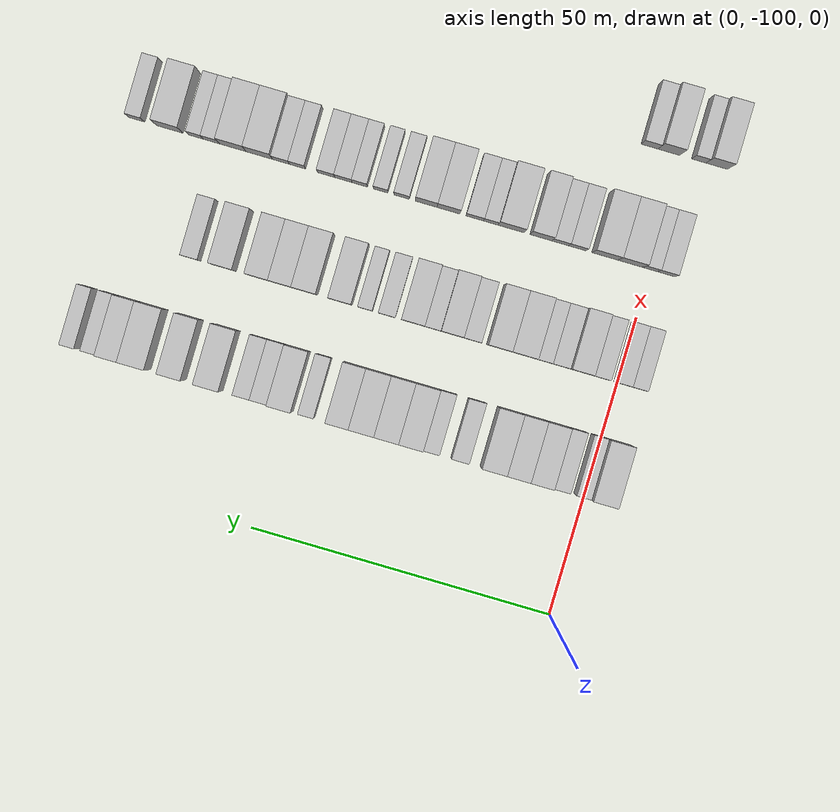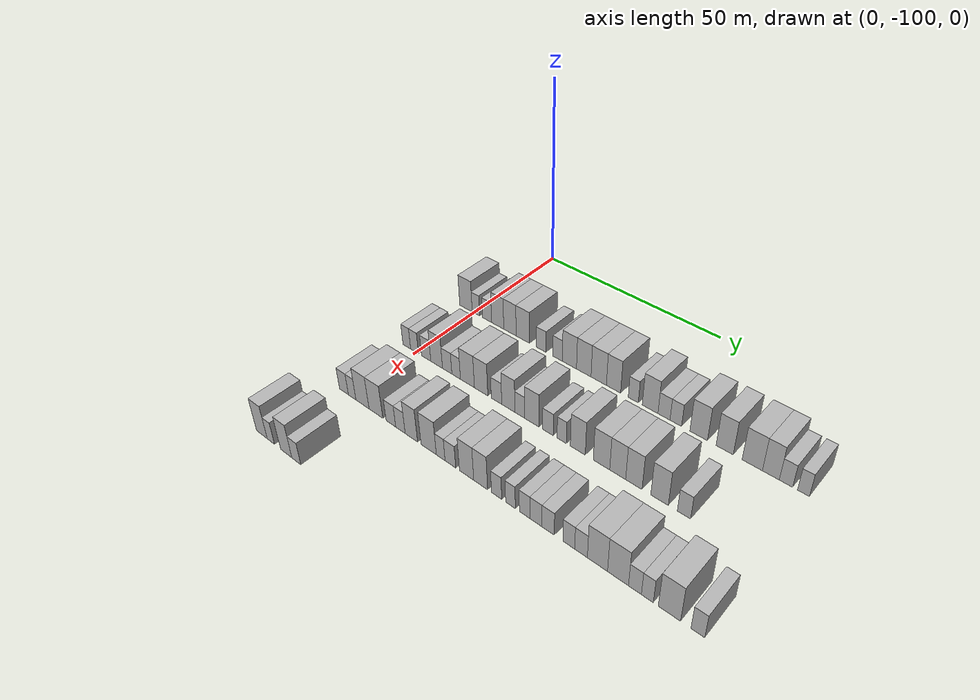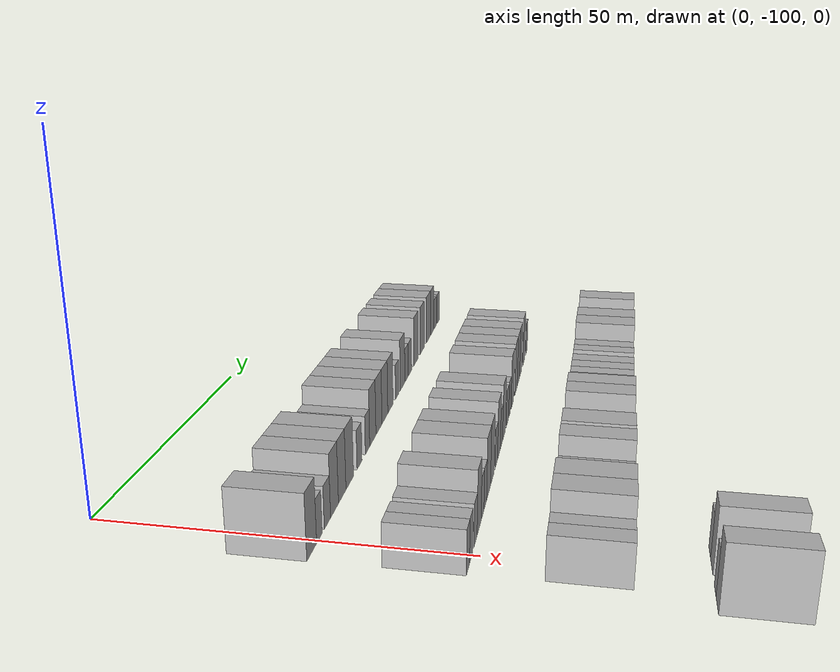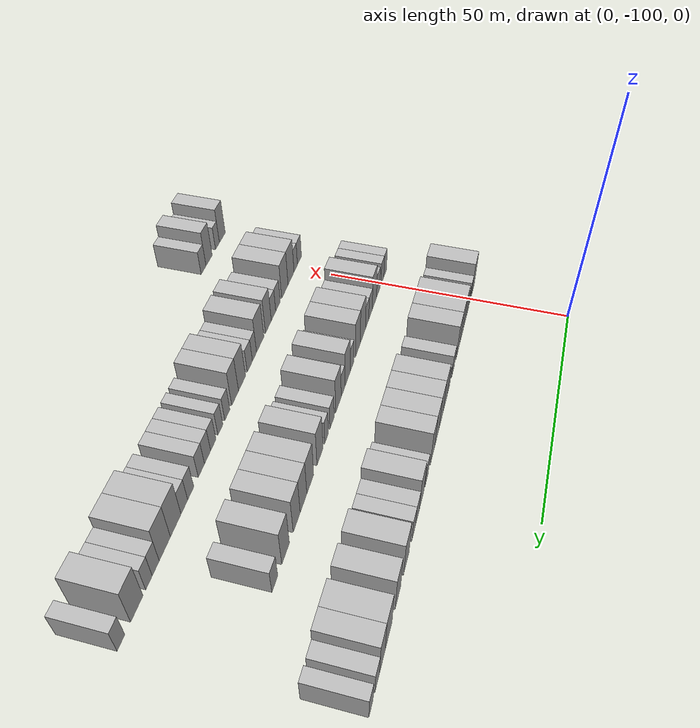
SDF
<sdf version="1.6">
 <world name="default">
  <model name="building_58">
   <static>1</static>
   <pose>25.0000 -102.7263 0 0.000000 0.000000 0.000000</pose>
   <link name="link">
    <pose>0 0 4.50 0 0 0</pose>
    <collision name="collision"><geometry><box><size>10.0000 4.1462 9.0000</size></box></geometry></collision>
    <visual name="visual">
     <cast_shadows>0</cast_shadows>
     <geometry><box><size>10.0000 4.1462 9.0000</size></box></geometry>
     <material>
      <script>
       <uri>model://HANNAS_wall/materials/scripts</uri>
       <uri>model://HANNAS_wall/materials/textures</uri>
       <name>vrc/HANNAS_wall</name>
      </script>
     </material>
    </visual>
   </link>
  </model>
  <model name="building_59">
   <static>1</static>
   <pose>25.0000 -99.4377 0 0.000000 0.000000 0.000000</pose>
   <link name="link">
    <pose>0 0 3.00 0 0 0</pose>
    <collision name="collision"><geometry><box><size>10.0000 2.4309 6.0000</size></box></geometry></collision>
    <visual name="visual">
     <cast_shadows>0</cast_shadows>
     <geometry><box><size>10.0000 2.4309 6.0000</size></box></geometry>
     <material>
      <script>
       <uri>model://HANNAS_wall/materials/scripts</uri>
       <uri>model://HANNAS_wall/materials/textures</uri>
       <name>vrc/HANNAS_wall</name>
      </script>
     </material>
    </visual>
   </link>
  </model>
  <model name="building_60">
   <static>1</static>
   <pose>25.0000 -95.7595 0 0.000000 0.000000 0.000000</pose>
   <link name="link">
    <pose>0 0 3.00 0 0 0</pose>
    <collision name="collision"><geometry><box><size>10.0000 2.9256 6.0000</size></box></geometry></collision>
    <visual name="visual">
     <cast_shadows>0</cast_shadows>
     <geometry><box><size>10.0000 2.9256 6.0000</size></box></geometry>
     <material>
      <script>
       <uri>model://HANNAS_wall/materials/scripts</uri>
       <uri>model://HANNAS_wall/materials/textures</uri>
       <name>vrc/HANNAS_wall</name>
      </script>
     </material>
    </visual>
   </link>
  </model>
  <model name="building_61">
   <static>1</static>
   <pose>25.0000 -92.3745 0 0.000000 0.000000 0.000000</pose>
   <link name="link">
    <pose>0 0 4.50 0 0 0</pose>
    <collision name="collision"><geometry><box><size>10.0000 3.8444 9.0000</size></box></geometry></collision>
    <visual name="visual">
     <cast_shadows>0</cast_shadows>
     <geometry><box><size>10.0000 3.8444 9.0000</size></box></geometry>
     <material>
      <script>
       <uri>model://HANNAS_wall/materials/scripts</uri>
       <uri>model://HANNAS_wall/materials/textures</uri>
       <name>vrc/HANNAS_wall</name>
      </script>
     </material>
    </visual>
   </link>
  </model>
  <model name="building_62">
   <static>1</static>
   <pose>25.0000 -88.5157 0 0.000000 0.000000 0.000000</pose>
   <link name="link">
    <pose>0 0 4.50 0 0 0</pose>
    <collision name="collision"><geometry><box><size>10.0000 3.8732 9.0000</size></box></geometry></collision>
    <visual name="visual">
     <cast_shadows>0</cast_shadows>
     <geometry><box><size>10.0000 3.8732 9.0000</size></box></geometry>
     <material>
      <script>
       <uri>model://HANNAS_wall/materials/scripts</uri>
       <uri>model://HANNAS_wall/materials/textures</uri>
       <name>vrc/HANNAS_wall</name>
      </script>
     </material>
    </visual>
   </link>
  </model>
  <model name="building_63">
   <static>1</static>
   <pose>25.0000 -84.5282 0 0.000000 0.000000 0.000000</pose>
   <link name="link">
    <pose>0 0 4.50 0 0 0</pose>
    <collision name="collision"><geometry><box><size>10.0000 4.1018 9.0000</size></box></geometry></collision>
    <visual name="visual">
     <cast_shadows>0</cast_shadows>
     <geometry><box><size>10.0000 4.1018 9.0000</size></box></geometry>
     <material>
      <script>
       <uri>model://HANNAS_wall/materials/scripts</uri>
       <uri>model://HANNAS_wall/materials/textures</uri>
       <name>vrc/HANNAS_wall</name>
      </script>
     </material>
    </visual>
   </link>
  </model>
  <model name="building_64">
   <static>1</static>
   <pose>25.0000 -79.0219 0 0.000000 0.000000 0.000000</pose>
   <link name="link">
    <pose>0 0 3.00 0 0 0</pose>
    <collision name="collision"><geometry><box><size>10.0000 2.9110 6.0000</size></box></geometry></collision>
    <visual name="visual">
     <cast_shadows>0</cast_shadows>
     <geometry><box><size>10.0000 2.9110 6.0000</size></box></geometry>
     <material>
      <script>
       <uri>model://HANNAS_wall/materials/scripts</uri>
       <uri>model://HANNAS_wall/materials/textures</uri>
       <name>vrc/HANNAS_wall</name>
      </script>
     </material>
    </visual>
   </link>
  </model>
  <model name="building_65">
   <static>1</static>
   <pose>25.0000 -74.2124 0 0.000000 0.000000 0.000000</pose>
   <link name="link">
    <pose>0 0 3.00 0 0 0</pose>
    <collision name="collision"><geometry><box><size>10.0000 2.7080 6.0000</size></box></geometry></collision>
    <visual name="visual">
     <cast_shadows>0</cast_shadows>
     <geometry><box><size>10.0000 2.7080 6.0000</size></box></geometry>
     <material>
      <script>
       <uri>model://HANNAS_wall/materials/scripts</uri>
       <uri>model://HANNAS_wall/materials/textures</uri>
       <name>vrc/HANNAS_wall</name>
      </script>
     </material>
    </visual>
   </link>
  </model>
  <model name="building_66">
   <static>1</static>
   <pose>25.0000 -70.8335 0 0.000000 0.000000 0.000000</pose>
   <link name="link">
    <pose>0 0 4.50 0 0 0</pose>
    <collision name="collision"><geometry><box><size>10.0000 4.0499 9.0000</size></box></geometry></collision>
    <visual name="visual">
     <cast_shadows>0</cast_shadows>
     <geometry><box><size>10.0000 4.0499 9.0000</size></box></geometry>
     <material>
      <script>
       <uri>model://HANNAS_wall/materials/scripts</uri>
       <uri>model://HANNAS_wall/materials/textures</uri>
       <name>vrc/HANNAS_wall</name>
      </script>
     </material>
    </visual>
   </link>
  </model>
  <model name="building_67">
   <static>1</static>
   <pose>25.0000 -66.7800 0 0.000000 0.000000 0.000000</pose>
   <link name="link">
    <pose>0 0 4.50 0 0 0</pose>
    <collision name="collision"><geometry><box><size>10.0000 4.0570 9.0000</size></box></geometry></collision>
    <visual name="visual">
     <cast_shadows>0</cast_shadows>
     <geometry><box><size>10.0000 4.0570 9.0000</size></box></geometry>
     <material>
      <script>
       <uri>model://HANNAS_wall/materials/scripts</uri>
       <uri>model://HANNAS_wall/materials/textures</uri>
       <name>vrc/HANNAS_wall</name>
      </script>
     </material>
    </visual>
   </link>
  </model>
  <model name="building_68">
   <static>1</static>
   <pose>25.0000 -62.6596 0 0.000000 0.000000 0.000000</pose>
   <link name="link">
    <pose>0 0 4.50 0 0 0</pose>
    <collision name="collision"><geometry><box><size>10.0000 4.1837 9.0000</size></box></geometry></collision>
    <visual name="visual">
     <cast_shadows>0</cast_shadows>
     <geometry><box><size>10.0000 4.1837 9.0000</size></box></geometry>
     <material>
      <script>
       <uri>model://HANNAS_wall/materials/scripts</uri>
       <uri>model://HANNAS_wall/materials/textures</uri>
       <name>vrc/HANNAS_wall</name>
      </script>
     </material>
    </visual>
   </link>
  </model>
  <model name="building_69">
   <static>1</static>
   <pose>25.0000 -58.6650 0 0.000000 0.000000 0.000000</pose>
   <link name="link">
    <pose>0 0 4.50 0 0 0</pose>
    <collision name="collision"><geometry><box><size>10.0000 3.8054 9.0000</size></box></geometry></collision>
    <visual name="visual">
     <cast_shadows>0</cast_shadows>
     <geometry><box><size>10.0000 3.8054 9.0000</size></box></geometry>
     <material>
      <script>
       <uri>model://HANNAS_wall/materials/scripts</uri>
       <uri>model://HANNAS_wall/materials/textures</uri>
       <name>vrc/HANNAS_wall</name>
      </script>
     </material>
    </visual>
   </link>
  </model>
  <model name="building_70">
   <static>1</static>
   <pose>25.0000 -53.4496 0 0.000000 0.000000 0.000000</pose>
   <link name="link">
    <pose>0 0 3.00 0 0 0</pose>
    <collision name="collision"><geometry><box><size>10.0000 2.6254 6.0000</size></box></geometry></collision>
    <visual name="visual">
     <cast_shadows>0</cast_shadows>
     <geometry><box><size>10.0000 2.6254 6.0000</size></box></geometry>
     <material>
      <script>
       <uri>model://HANNAS_wall/materials/scripts</uri>
       <uri>model://HANNAS_wall/materials/textures</uri>
       <name>vrc/HANNAS_wall</name>
      </script>
     </material>
    </visual>
   </link>
  </model>
  <model name="building_71">
   <static>1</static>
   <pose>25.0000 -49.1461 0 0.000000 0.000000 0.000000</pose>
   <link name="link">
    <pose>0 0 4.50 0 0 0</pose>
    <collision name="collision"><geometry><box><size>10.0000 3.9816 9.0000</size></box></geometry></collision>
    <visual name="visual">
     <cast_shadows>0</cast_shadows>
     <geometry><box><size>10.0000 3.9816 9.0000</size></box></geometry>
     <material>
      <script>
       <uri>model://HANNAS_wall/materials/scripts</uri>
       <uri>model://HANNAS_wall/materials/textures</uri>
       <name>vrc/HANNAS_wall</name>
      </script>
     </material>
    </visual>
   </link>
  </model>
  <model name="building_72">
   <static>1</static>
   <pose>25.0000 -45.6594 0 0.000000 0.000000 0.000000</pose>
   <link name="link">
    <pose>0 0 3.00 0 0 0</pose>
    <collision name="collision"><geometry><box><size>10.0000 2.9919 6.0000</size></box></geometry></collision>
    <visual name="visual">
     <cast_shadows>0</cast_shadows>
     <geometry><box><size>10.0000 2.9919 6.0000</size></box></geometry>
     <material>
      <script>
       <uri>model://HANNAS_wall/materials/scripts</uri>
       <uri>model://HANNAS_wall/materials/textures</uri>
       <name>vrc/HANNAS_wall</name>
      </script>
     </material>
    </visual>
   </link>
  </model>
  <model name="building_73">
   <static>1</static>
   <pose>25.0000 -42.7494 0 0.000000 0.000000 0.000000</pose>
   <link name="link">
    <pose>0 0 3.00 0 0 0</pose>
    <collision name="collision"><geometry><box><size>10.0000 2.8281 6.0000</size></box></geometry></collision>
    <visual name="visual">
     <cast_shadows>0</cast_shadows>
     <geometry><box><size>10.0000 2.8281 6.0000</size></box></geometry>
     <material>
      <script>
       <uri>model://HANNAS_wall/materials/scripts</uri>
       <uri>model://HANNAS_wall/materials/textures</uri>
       <name>vrc/HANNAS_wall</name>
      </script>
     </material>
    </visual>
   </link>
  </model>
  <model name="building_74">
   <static>1</static>
   <pose>25.0000 -37.2447 0 0.000000 0.000000 0.000000</pose>
   <link name="link">
    <pose>0 0 4.50 0 0 0</pose>
    <collision name="collision"><geometry><box><size>10.0000 4.1814 9.0000</size></box></geometry></collision>
    <visual name="visual">
     <cast_shadows>0</cast_shadows>
     <geometry><box><size>10.0000 4.1814 9.0000</size></box></geometry>
     <material>
      <script>
       <uri>model://HANNAS_wall/materials/scripts</uri>
       <uri>model://HANNAS_wall/materials/textures</uri>
       <name>vrc/HANNAS_wall</name>
      </script>
     </material>
    </visual>
   </link>
  </model>
  <model name="building_75">
   <static>1</static>
   <pose>25.0000 -31.1862 0 0.000000 0.000000 0.000000</pose>
   <link name="link">
    <pose>0 0 4.50 0 0 0</pose>
    <collision name="collision"><geometry><box><size>10.0000 3.9354 9.0000</size></box></geometry></collision>
    <visual name="visual">
     <cast_shadows>0</cast_shadows>
     <geometry><box><size>10.0000 3.9354 9.0000</size></box></geometry>
     <material>
      <script>
       <uri>model://HANNAS_wall/materials/scripts</uri>
       <uri>model://HANNAS_wall/materials/textures</uri>
       <name>vrc/HANNAS_wall</name>
      </script>
     </material>
    </visual>
   </link>
  </model>
  <model name="building_76">
   <static>1</static>
   <pose>25.0000 -24.9823 0 0.000000 0.000000 0.000000</pose>
   <link name="link">
    <pose>0 0 4.50 0 0 0</pose>
    <collision name="collision"><geometry><box><size>10.0000 4.4725 9.0000</size></box></geometry></collision>
    <visual name="visual">
     <cast_shadows>0</cast_shadows>
     <geometry><box><size>10.0000 4.4725 9.0000</size></box></geometry>
     <material>
      <script>
       <uri>model://HANNAS_wall/materials/scripts</uri>
       <uri>model://HANNAS_wall/materials/textures</uri>
       <name>vrc/HANNAS_wall</name>
      </script>
     </material>
    </visual>
   </link>
  </model>
  <model name="building_77">
   <static>1</static>
   <pose>25.0000 -20.9262 0 0.000000 0.000000 0.000000</pose>
   <link name="link">
    <pose>0 0 4.50 0 0 0</pose>
    <collision name="collision"><geometry><box><size>10.0000 3.6397 9.0000</size></box></geometry></collision>
    <visual name="visual">
     <cast_shadows>0</cast_shadows>
     <geometry><box><size>10.0000 3.6397 9.0000</size></box></geometry>
     <material>
      <script>
       <uri>model://HANNAS_wall/materials/scripts</uri>
       <uri>model://HANNAS_wall/materials/textures</uri>
       <name>vrc/HANNAS_wall</name>
      </script>
     </material>
    </visual>
   </link>
  </model>
  <model name="building_78">
   <static>1</static>
   <pose>25.0000 -17.6919 0 0.000000 0.000000 0.000000</pose>
   <link name="link">
    <pose>0 0 3.00 0 0 0</pose>
    <collision name="collision"><geometry><box><size>10.0000 2.8288 6.0000</size></box></geometry></collision>
    <visual name="visual">
     <cast_shadows>0</cast_shadows>
     <geometry><box><size>10.0000 2.8288 6.0000</size></box></geometry>
     <material>
      <script>
       <uri>model://HANNAS_wall/materials/scripts</uri>
       <uri>model://HANNAS_wall/materials/textures</uri>
       <name>vrc/HANNAS_wall</name>
      </script>
     </material>
    </visual>
   </link>
  </model>
  <model name="building_79">
   <static>1</static>
   <pose>25.0000 -14.0404 0 0.000000 0.000000 0.000000</pose>
   <link name="link">
    <pose>0 0 3.00 0 0 0</pose>
    <collision name="collision"><geometry><box><size>10.0000 2.4742 6.0000</size></box></geometry></collision>
    <visual name="visual">
     <cast_shadows>0</cast_shadows>
     <geometry><box><size>10.0000 2.4742 6.0000</size></box></geometry>
     <material>
      <script>
       <uri>model://HANNAS_wall/materials/scripts</uri>
       <uri>model://HANNAS_wall/materials/textures</uri>
       <name>vrc/HANNAS_wall</name>
      </script>
     </material>
    </visual>
   </link>
  </model>
  <model name="building_220">
   <static>1</static>
   <pose>44.0000 -103.2041 0 0.000000 0.000000 0.000000</pose>
   <link name="link">
    <pose>0 0 3.00 0 0 0</pose>
    <collision name="collision"><geometry><box><size>10.0000 2.5457 6.0000</size></box></geometry></collision>
    <visual name="visual">
     <cast_shadows>0</cast_shadows>
     <geometry><box><size>10.0000 2.5457 6.0000</size></box></geometry>
     <material>
      <script>
       <uri>model://HANNAS_wall/materials/scripts</uri>
       <uri>model://HANNAS_wall/materials/textures</uri>
       <name>vrc/HANNAS_wall</name>
      </script>
     </material>
    </visual>
   </link>
  </model>
  <model name="building_221">
   <static>1</static>
   <pose>44.0000 -100.6495 0 0.000000 0.000000 0.000000</pose>
   <link name="link">
    <pose>0 0 3.00 0 0 0</pose>
    <collision name="collision"><geometry><box><size>10.0000 2.5634 6.0000</size></box></geometry></collision>
    <visual name="visual">
     <cast_shadows>0</cast_shadows>
     <geometry><box><size>10.0000 2.5634 6.0000</size></box></geometry>
     <material>
      <script>
       <uri>model://HANNAS_wall/materials/scripts</uri>
       <uri>model://HANNAS_wall/materials/textures</uri>
       <name>vrc/HANNAS_wall</name>
      </script>
     </material>
    </visual>
   </link>
  </model>
  <model name="building_222">
   <static>1</static>
   <pose>44.0000 -96.8733 0 0.000000 0.000000 0.000000</pose>
   <link name="link">
    <pose>0 0 3.00 0 0 0</pose>
    <collision name="collision"><geometry><box><size>10.0000 2.9889 6.0000</size></box></geometry></collision>
    <visual name="visual">
     <cast_shadows>0</cast_shadows>
     <geometry><box><size>10.0000 2.9889 6.0000</size></box></geometry>
     <material>
      <script>
       <uri>model://HANNAS_wall/materials/scripts</uri>
       <uri>model://HANNAS_wall/materials/textures</uri>
       <name>vrc/HANNAS_wall</name>
      </script>
     </material>
    </visual>
   </link>
  </model>
  <model name="building_223">
   <static>1</static>
   <pose>44.0000 -93.5309 0 0.000000 0.000000 0.000000</pose>
   <link name="link">
    <pose>0 0 4.50 0 0 0</pose>
    <collision name="collision"><geometry><box><size>10.0000 3.6960 9.0000</size></box></geometry></collision>
    <visual name="visual">
     <cast_shadows>0</cast_shadows>
     <geometry><box><size>10.0000 3.6960 9.0000</size></box></geometry>
     <material>
      <script>
       <uri>model://HANNAS_wall/materials/scripts</uri>
       <uri>model://HANNAS_wall/materials/textures</uri>
       <name>vrc/HANNAS_wall</name>
      </script>
     </material>
    </visual>
   </link>
  </model>
  <model name="building_224">
   <static>1</static>
   <pose>44.0000 -90.2300 0 0.000000 0.000000 0.000000</pose>
   <link name="link">
    <pose>0 0 3.00 0 0 0</pose>
    <collision name="collision"><geometry><box><size>10.0000 2.9059 6.0000</size></box></geometry></collision>
    <visual name="visual">
     <cast_shadows>0</cast_shadows>
     <geometry><box><size>10.0000 2.9059 6.0000</size></box></geometry>
     <material>
      <script>
       <uri>model://HANNAS_wall/materials/scripts</uri>
       <uri>model://HANNAS_wall/materials/textures</uri>
       <name>vrc/HANNAS_wall</name>
      </script>
     </material>
    </visual>
   </link>
  </model>
  <model name="building_225">
   <static>1</static>
   <pose>44.0000 -87.4638 0 0.000000 0.000000 0.000000</pose>
   <link name="link">
    <pose>0 0 3.00 0 0 0</pose>
    <collision name="collision"><geometry><box><size>10.0000 2.6264 6.0000</size></box></geometry></collision>
    <visual name="visual">
     <cast_shadows>0</cast_shadows>
     <geometry><box><size>10.0000 2.6264 6.0000</size></box></geometry>
     <material>
      <script>
       <uri>model://HANNAS_wall/materials/scripts</uri>
       <uri>model://HANNAS_wall/materials/textures</uri>
       <name>vrc/HANNAS_wall</name>
      </script>
     </material>
    </visual>
   </link>
  </model>
  <model name="building_226">
   <static>1</static>
   <pose>44.0000 -84.0478 0 0.000000 0.000000 0.000000</pose>
   <link name="link">
    <pose>0 0 4.50 0 0 0</pose>
    <collision name="collision"><geometry><box><size>10.0000 4.2056 9.0000</size></box></geometry></collision>
    <visual name="visual">
     <cast_shadows>0</cast_shadows>
     <geometry><box><size>10.0000 4.2056 9.0000</size></box></geometry>
     <material>
      <script>
       <uri>model://HANNAS_wall/materials/scripts</uri>
       <uri>model://HANNAS_wall/materials/textures</uri>
       <name>vrc/HANNAS_wall</name>
      </script>
     </material>
    </visual>
   </link>
  </model>
  <model name="building_227">
   <static>1</static>
   <pose>44.0000 -79.9725 0 0.000000 0.000000 0.000000</pose>
   <link name="link">
    <pose>0 0 4.50 0 0 0</pose>
    <collision name="collision"><geometry><box><size>10.0000 3.9449 9.0000</size></box></geometry></collision>
    <visual name="visual">
     <cast_shadows>0</cast_shadows>
     <geometry><box><size>10.0000 3.9449 9.0000</size></box></geometry>
     <material>
      <script>
       <uri>model://HANNAS_wall/materials/scripts</uri>
       <uri>model://HANNAS_wall/materials/textures</uri>
       <name>vrc/HANNAS_wall</name>
      </script>
     </material>
    </visual>
   </link>
  </model>
  <model name="building_228">
   <static>1</static>
   <pose>44.0000 -75.5027 0 0.000000 0.000000 0.000000</pose>
   <link name="link">
    <pose>0 0 3.00 0 0 0</pose>
    <collision name="collision"><geometry><box><size>10.0000 2.9947 6.0000</size></box></geometry></collision>
    <visual name="visual">
     <cast_shadows>0</cast_shadows>
     <geometry><box><size>10.0000 2.9947 6.0000</size></box></geometry>
     <material>
      <script>
       <uri>model://HANNAS_wall/materials/scripts</uri>
       <uri>model://HANNAS_wall/materials/textures</uri>
       <name>vrc/HANNAS_wall</name>
      </script>
     </material>
    </visual>
   </link>
  </model>
  <model name="building_229">
   <static>1</static>
   <pose>44.0000 -72.1398 0 0.000000 0.000000 0.000000</pose>
   <link name="link">
    <pose>0 0 4.50 0 0 0</pose>
    <collision name="collision"><geometry><box><size>10.0000 3.7310 9.0000</size></box></geometry></collision>
    <visual name="visual">
     <cast_shadows>0</cast_shadows>
     <geometry><box><size>10.0000 3.7310 9.0000</size></box></geometry>
     <material>
      <script>
       <uri>model://HANNAS_wall/materials/scripts</uri>
       <uri>model://HANNAS_wall/materials/textures</uri>
       <name>vrc/HANNAS_wall</name>
      </script>
     </material>
    </visual>
   </link>
  </model>
  <model name="building_230">
   <static>1</static>
   <pose>44.0000 -68.9343 0 0.000000 0.000000 0.000000</pose>
   <link name="link">
    <pose>0 0 3.00 0 0 0</pose>
    <collision name="collision"><geometry><box><size>10.0000 2.6800 6.0000</size></box></geometry></collision>
    <visual name="visual">
     <cast_shadows>0</cast_shadows>
     <geometry><box><size>10.0000 2.6800 6.0000</size></box></geometry>
     <material>
      <script>
       <uri>model://HANNAS_wall/materials/scripts</uri>
       <uri>model://HANNAS_wall/materials/textures</uri>
       <name>vrc/HANNAS_wall</name>
      </script>
     </material>
    </visual>
   </link>
  </model>
  <model name="building_231">
   <static>1</static>
   <pose>44.0000 -65.6612 0 0.000000 0.000000 0.000000</pose>
   <link name="link">
    <pose>0 0 4.50 0 0 0</pose>
    <collision name="collision"><geometry><box><size>10.0000 3.8662 9.0000</size></box></geometry></collision>
    <visual name="visual">
     <cast_shadows>0</cast_shadows>
     <geometry><box><size>10.0000 3.8662 9.0000</size></box></geometry>
     <material>
      <script>
       <uri>model://HANNAS_wall/materials/scripts</uri>
       <uri>model://HANNAS_wall/materials/textures</uri>
       <name>vrc/HANNAS_wall</name>
      </script>
     </material>
    </visual>
   </link>
  </model>
  <model name="building_232">
   <static>1</static>
   <pose>44.0000 -61.3179 0 0.000000 0.000000 0.000000</pose>
   <link name="link">
    <pose>0 0 3.00 0 0 0</pose>
    <collision name="collision"><geometry><box><size>10.0000 2.8205 6.0000</size></box></geometry></collision>
    <visual name="visual">
     <cast_shadows>0</cast_shadows>
     <geometry><box><size>10.0000 2.8205 6.0000</size></box></geometry>
     <material>
      <script>
       <uri>model://HANNAS_wall/materials/scripts</uri>
       <uri>model://HANNAS_wall/materials/textures</uri>
       <name>vrc/HANNAS_wall</name>
      </script>
     </material>
    </visual>
   </link>
  </model>
  <model name="building_233">
   <static>1</static>
   <pose>44.0000 -57.6970 0 0.000000 0.000000 0.000000</pose>
   <link name="link">
    <pose>0 0 3.00 0 0 0</pose>
    <collision name="collision"><geometry><box><size>10.0000 2.4213 6.0000</size></box></geometry></collision>
    <visual name="visual">
     <cast_shadows>0</cast_shadows>
     <geometry><box><size>10.0000 2.4213 6.0000</size></box></geometry>
     <material>
      <script>
       <uri>model://HANNAS_wall/materials/scripts</uri>
       <uri>model://HANNAS_wall/materials/textures</uri>
       <name>vrc/HANNAS_wall</name>
      </script>
     </material>
    </visual>
   </link>
  </model>
  <model name="building_234">
   <static>1</static>
   <pose>44.0000 -53.5879 0 0.000000 0.000000 0.000000</pose>
   <link name="link">
    <pose>0 0 4.50 0 0 0</pose>
    <collision name="collision"><geometry><box><size>10.0000 3.7968 9.0000</size></box></geometry></collision>
    <visual name="visual">
     <cast_shadows>0</cast_shadows>
     <geometry><box><size>10.0000 3.7968 9.0000</size></box></geometry>
     <material>
      <script>
       <uri>model://HANNAS_wall/materials/scripts</uri>
       <uri>model://HANNAS_wall/materials/textures</uri>
       <name>vrc/HANNAS_wall</name>
      </script>
     </material>
    </visual>
   </link>
  </model>
  <model name="building_235">
   <static>1</static>
   <pose>44.0000 -47.6789 0 0.000000 0.000000 0.000000</pose>
   <link name="link">
    <pose>0 0 4.50 0 0 0</pose>
    <collision name="collision"><geometry><box><size>10.0000 4.0213 9.0000</size></box></geometry></collision>
    <visual name="visual">
     <cast_shadows>0</cast_shadows>
     <geometry><box><size>10.0000 4.0213 9.0000</size></box></geometry>
     <material>
      <script>
       <uri>model://HANNAS_wall/materials/scripts</uri>
       <uri>model://HANNAS_wall/materials/textures</uri>
       <name>vrc/HANNAS_wall</name>
      </script>
     </material>
    </visual>
   </link>
  </model>
  <model name="building_236">
   <static>1</static>
   <pose>44.0000 -43.7655 0 0.000000 0.000000 0.000000</pose>
   <link name="link">
    <pose>0 0 4.50 0 0 0</pose>
    <collision name="collision"><geometry><box><size>10.0000 3.8055 9.0000</size></box></geometry></collision>
    <visual name="visual">
     <cast_shadows>0</cast_shadows>
     <geometry><box><size>10.0000 3.8055 9.0000</size></box></geometry>
     <material>
      <script>
       <uri>model://HANNAS_wall/materials/scripts</uri>
       <uri>model://HANNAS_wall/materials/textures</uri>
       <name>vrc/HANNAS_wall</name>
      </script>
     </material>
    </visual>
   </link>
  </model>
  <model name="building_237">
   <static>1</static>
   <pose>44.0000 -39.9417 0 0.000000 0.000000 0.000000</pose>
   <link name="link">
    <pose>0 0 4.50 0 0 0</pose>
    <collision name="collision"><geometry><box><size>10.0000 3.8422 9.0000</size></box></geometry></collision>
    <visual name="visual">
     <cast_shadows>0</cast_shadows>
     <geometry><box><size>10.0000 3.8422 9.0000</size></box></geometry>
     <material>
      <script>
       <uri>model://HANNAS_wall/materials/scripts</uri>
       <uri>model://HANNAS_wall/materials/textures</uri>
       <name>vrc/HANNAS_wall</name>
      </script>
     </material>
    </visual>
   </link>
  </model>
  <model name="building_238">
   <static>1</static>
   <pose>44.0000 -34.0432 0 0.000000 0.000000 0.000000</pose>
   <link name="link">
    <pose>0 0 4.50 0 0 0</pose>
    <collision name="collision"><geometry><box><size>10.0000 3.9546 9.0000</size></box></geometry></collision>
    <visual name="visual">
     <cast_shadows>0</cast_shadows>
     <geometry><box><size>10.0000 3.9546 9.0000</size></box></geometry>
     <material>
      <script>
       <uri>model://HANNAS_wall/materials/scripts</uri>
       <uri>model://HANNAS_wall/materials/textures</uri>
       <name>vrc/HANNAS_wall</name>
      </script>
     </material>
    </visual>
   </link>
  </model>
  <model name="building_239">
   <static>1</static>
   <pose>44.0000 -28.6204 0 0.000000 0.000000 0.000000</pose>
   <link name="link">
    <pose>0 0 3.00 0 0 0</pose>
    <collision name="collision"><geometry><box><size>10.0000 2.8911 6.0000</size></box></geometry></collision>
    <visual name="visual">
     <cast_shadows>0</cast_shadows>
     <geometry><box><size>10.0000 2.8911 6.0000</size></box></geometry>
     <material>
      <script>
       <uri>model://HANNAS_wall/materials/scripts</uri>
       <uri>model://HANNAS_wall/materials/textures</uri>
       <name>vrc/HANNAS_wall</name>
      </script>
     </material>
    </visual>
   </link>
  </model>
  <model name="building_396">
   <static>1</static>
   <pose>63.0000 -102.5530 0 0.000000 0.000000 0.000000</pose>
   <link name="link">
    <pose>0 0 3.00 0 0 0</pose>
    <collision name="collision"><geometry><box><size>10.0000 2.9256 6.0000</size></box></geometry></collision>
    <visual name="visual">
     <cast_shadows>0</cast_shadows>
     <geometry><box><size>10.0000 2.9256 6.0000</size></box></geometry>
     <material>
      <script>
       <uri>model://HANNAS_wall/materials/scripts</uri>
       <uri>model://HANNAS_wall/materials/textures</uri>
       <name>vrc/HANNAS_wall</name>
      </script>
     </material>
    </visual>
   </link>
  </model>
  <model name="building_397">
   <static>1</static>
   <pose>63.0000 -99.8697 0 0.000000 0.000000 0.000000</pose>
   <link name="link">
    <pose>0 0 3.00 0 0 0</pose>
    <collision name="collision"><geometry><box><size>10.0000 2.4409 6.0000</size></box></geometry></collision>
    <visual name="visual">
     <cast_shadows>0</cast_shadows>
     <geometry><box><size>10.0000 2.4409 6.0000</size></box></geometry>
     <material>
      <script>
       <uri>model://HANNAS_wall/materials/scripts</uri>
       <uri>model://HANNAS_wall/materials/textures</uri>
       <name>vrc/HANNAS_wall</name>
      </script>
     </material>
    </visual>
   </link>
  </model>
  <model name="building_398">
   <static>1</static>
   <pose>63.0000 -96.5523 0 0.000000 0.000000 0.000000</pose>
   <link name="link">
    <pose>0 0 4.50 0 0 0</pose>
    <collision name="collision"><geometry><box><size>10.0000 4.1939 9.0000</size></box></geometry></collision>
    <visual name="visual">
     <cast_shadows>0</cast_shadows>
     <geometry><box><size>10.0000 4.1939 9.0000</size></box></geometry>
     <material>
      <script>
       <uri>model://HANNAS_wall/materials/scripts</uri>
       <uri>model://HANNAS_wall/materials/textures</uri>
       <name>vrc/HANNAS_wall</name>
      </script>
     </material>
    </visual>
   </link>
  </model>
  <model name="building_399">
   <static>1</static>
   <pose>63.0000 -92.2977 0 0.000000 0.000000 0.000000</pose>
   <link name="link">
    <pose>0 0 4.50 0 0 0</pose>
    <collision name="collision"><geometry><box><size>10.0000 4.3153 9.0000</size></box></geometry></collision>
    <visual name="visual">
     <cast_shadows>0</cast_shadows>
     <geometry><box><size>10.0000 4.3153 9.0000</size></box></geometry>
     <material>
      <script>
       <uri>model://HANNAS_wall/materials/scripts</uri>
       <uri>model://HANNAS_wall/materials/textures</uri>
       <name>vrc/HANNAS_wall</name>
      </script>
     </material>
    </visual>
   </link>
  </model>
  <model name="building_400">
   <static>1</static>
   <pose>63.0000 -87.6794 0 0.000000 0.000000 0.000000</pose>
   <link name="link">
    <pose>0 0 3.00 0 0 0</pose>
    <collision name="collision"><geometry><box><size>10.0000 2.9213 6.0000</size></box></geometry></collision>
    <visual name="visual">
     <cast_shadows>0</cast_shadows>
     <geometry><box><size>10.0000 2.9213 6.0000</size></box></geometry>
     <material>
      <script>
       <uri>model://HANNAS_wall/materials/scripts</uri>
       <uri>model://HANNAS_wall/materials/textures</uri>
       <name>vrc/HANNAS_wall</name>
      </script>
     </material>
    </visual>
   </link>
  </model>
  <model name="building_401">
   <static>1</static>
   <pose>63.0000 -84.8010 0 0.000000 0.000000 0.000000</pose>
   <link name="link">
    <pose>0 0 3.00 0 0 0</pose>
    <collision name="collision"><geometry><box><size>10.0000 2.8355 6.0000</size></box></geometry></collision>
    <visual name="visual">
     <cast_shadows>0</cast_shadows>
     <geometry><box><size>10.0000 2.8355 6.0000</size></box></geometry>
     <material>
      <script>
       <uri>model://HANNAS_wall/materials/scripts</uri>
       <uri>model://HANNAS_wall/materials/textures</uri>
       <name>vrc/HANNAS_wall</name>
      </script>
     </material>
    </visual>
   </link>
  </model>
  <model name="building_402">
   <static>1</static>
   <pose>63.0000 -81.5644 0 0.000000 0.000000 0.000000</pose>
   <link name="link">
    <pose>0 0 4.50 0 0 0</pose>
    <collision name="collision"><geometry><box><size>10.0000 3.6377 9.0000</size></box></geometry></collision>
    <visual name="visual">
     <cast_shadows>0</cast_shadows>
     <geometry><box><size>10.0000 3.6377 9.0000</size></box></geometry>
     <material>
      <script>
       <uri>model://HANNAS_wall/materials/scripts</uri>
       <uri>model://HANNAS_wall/materials/textures</uri>
       <name>vrc/HANNAS_wall</name>
      </script>
     </material>
    </visual>
   </link>
  </model>
  <model name="building_403">
   <static>1</static>
   <pose>63.0000 -76.5667 0 0.000000 0.000000 0.000000</pose>
   <link name="link">
    <pose>0 0 4.50 0 0 0</pose>
    <collision name="collision"><geometry><box><size>10.0000 4.3576 9.0000</size></box></geometry></collision>
    <visual name="visual">
     <cast_shadows>0</cast_shadows>
     <geometry><box><size>10.0000 4.3576 9.0000</size></box></geometry>
     <material>
      <script>
       <uri>model://HANNAS_wall/materials/scripts</uri>
       <uri>model://HANNAS_wall/materials/textures</uri>
       <name>vrc/HANNAS_wall</name>
      </script>
     </material>
    </visual>
   </link>
  </model>
  <model name="building_404">
   <static>1</static>
   <pose>63.0000 -73.1667 0 0.000000 0.000000 0.000000</pose>
   <link name="link">
    <pose>0 0 3.00 0 0 0</pose>
    <collision name="collision"><geometry><box><size>10.0000 2.4423 6.0000</size></box></geometry></collision>
    <visual name="visual">
     <cast_shadows>0</cast_shadows>
     <geometry><box><size>10.0000 2.4423 6.0000</size></box></geometry>
     <material>
      <script>
       <uri>model://HANNAS_wall/materials/scripts</uri>
       <uri>model://HANNAS_wall/materials/textures</uri>
       <name>vrc/HANNAS_wall</name>
      </script>
     </material>
    </visual>
   </link>
  </model>
  <model name="building_405">
   <static>1</static>
   <pose>63.0000 -70.4739 0 0.000000 0.000000 0.000000</pose>
   <link name="link">
    <pose>0 0 3.00 0 0 0</pose>
    <collision name="collision"><geometry><box><size>10.0000 2.9432 6.0000</size></box></geometry></collision>
    <visual name="visual">
     <cast_shadows>0</cast_shadows>
     <geometry><box><size>10.0000 2.9432 6.0000</size></box></geometry>
     <material>
      <script>
       <uri>model://HANNAS_wall/materials/scripts</uri>
       <uri>model://HANNAS_wall/materials/textures</uri>
       <name>vrc/HANNAS_wall</name>
      </script>
     </material>
    </visual>
   </link>
  </model>
  <model name="building_406">
   <static>1</static>
   <pose>63.0000 -66.0880 0 0.000000 0.000000 0.000000</pose>
   <link name="link">
    <pose>0 0 4.50 0 0 0</pose>
    <collision name="collision"><geometry><box><size>10.0000 3.8287 9.0000</size></box></geometry></collision>
    <visual name="visual">
     <cast_shadows>0</cast_shadows>
     <geometry><box><size>10.0000 3.8287 9.0000</size></box></geometry>
     <material>
      <script>
       <uri>model://HANNAS_wall/materials/scripts</uri>
       <uri>model://HANNAS_wall/materials/textures</uri>
       <name>vrc/HANNAS_wall</name>
      </script>
     </material>
    </visual>
   </link>
  </model>
  <model name="building_407">
   <static>1</static>
   <pose>63.0000 -62.3514 0 0.000000 0.000000 0.000000</pose>
   <link name="link">
    <pose>0 0 4.50 0 0 0</pose>
    <collision name="collision"><geometry><box><size>10.0000 3.6446 9.0000</size></box></geometry></collision>
    <visual name="visual">
     <cast_shadows>0</cast_shadows>
     <geometry><box><size>10.0000 3.6446 9.0000</size></box></geometry>
     <material>
      <script>
       <uri>model://HANNAS_wall/materials/scripts</uri>
       <uri>model://HANNAS_wall/materials/textures</uri>
       <name>vrc/HANNAS_wall</name>
      </script>
     </material>
    </visual>
   </link>
  </model>
  <model name="building_408">
   <static>1</static>
   <pose>63.0000 -58.2281 0 0.000000 0.000000 0.000000</pose>
   <link name="link">
    <pose>0 0 3.00 0 0 0</pose>
    <collision name="collision"><geometry><box><size>10.0000 2.6019 6.0000</size></box></geometry></collision>
    <visual name="visual">
     <cast_shadows>0</cast_shadows>
     <geometry><box><size>10.0000 2.6019 6.0000</size></box></geometry>
     <material>
      <script>
       <uri>model://HANNAS_wall/materials/scripts</uri>
       <uri>model://HANNAS_wall/materials/textures</uri>
       <name>vrc/HANNAS_wall</name>
      </script>
     </material>
    </visual>
   </link>
  </model>
  <model name="building_409">
   <static>1</static>
   <pose>63.0000 -54.7101 0 0.000000 0.000000 0.000000</pose>
   <link name="link">
    <pose>0 0 3.00 0 0 0</pose>
    <collision name="collision"><geometry><box><size>10.0000 2.4340 6.0000</size></box></geometry></collision>
    <visual name="visual">
     <cast_shadows>0</cast_shadows>
     <geometry><box><size>10.0000 2.4340 6.0000</size></box></geometry>
     <material>
      <script>
       <uri>model://HANNAS_wall/materials/scripts</uri>
       <uri>model://HANNAS_wall/materials/textures</uri>
       <name>vrc/HANNAS_wall</name>
      </script>
     </material>
    </visual>
   </link>
  </model>
  <model name="building_410">
   <static>1</static>
   <pose>63.0000 -51.2076 0 0.000000 0.000000 0.000000</pose>
   <link name="link">
    <pose>0 0 3.00 0 0 0</pose>
    <collision name="collision"><geometry><box><size>10.0000 2.5711 6.0000</size></box></geometry></collision>
    <visual name="visual">
     <cast_shadows>0</cast_shadows>
     <geometry><box><size>10.0000 2.5711 6.0000</size></box></geometry>
     <material>
      <script>
       <uri>model://HANNAS_wall/materials/scripts</uri>
       <uri>model://HANNAS_wall/materials/textures</uri>
       <name>vrc/HANNAS_wall</name>
      </script>
     </material>
    </visual>
   </link>
  </model>
  <model name="building_411">
   <static>1</static>
   <pose>63.0000 -48.4717 0 0.000000 0.000000 0.000000</pose>
   <link name="link">
    <pose>0 0 3.00 0 0 0</pose>
    <collision name="collision"><geometry><box><size>10.0000 2.9007 6.0000</size></box></geometry></collision>
    <visual name="visual">
     <cast_shadows>0</cast_shadows>
     <geometry><box><size>10.0000 2.9007 6.0000</size></box></geometry>
     <material>
      <script>
       <uri>model://HANNAS_wall/materials/scripts</uri>
       <uri>model://HANNAS_wall/materials/textures</uri>
       <name>vrc/HANNAS_wall</name>
      </script>
     </material>
    </visual>
   </link>
  </model>
  <model name="building_412">
   <static>1</static>
   <pose>63.0000 -45.5726 0 0.000000 0.000000 0.000000</pose>
   <link name="link">
    <pose>0 0 3.00 0 0 0</pose>
    <collision name="collision"><geometry><box><size>10.0000 2.8973 6.0000</size></box></geometry></collision>
    <visual name="visual">
     <cast_shadows>0</cast_shadows>
     <geometry><box><size>10.0000 2.8973 6.0000</size></box></geometry>
     <material>
      <script>
       <uri>model://HANNAS_wall/materials/scripts</uri>
       <uri>model://HANNAS_wall/materials/textures</uri>
       <name>vrc/HANNAS_wall</name>
      </script>
     </material>
    </visual>
   </link>
  </model>
  <model name="building_413">
   <static>1</static>
   <pose>63.0000 -40.7760 0 0.000000 0.000000 0.000000</pose>
   <link name="link">
    <pose>0 0 3.00 0 0 0</pose>
    <collision name="collision"><geometry><box><size>10.0000 2.6959 6.0000</size></box></geometry></collision>
    <visual name="visual">
     <cast_shadows>0</cast_shadows>
     <geometry><box><size>10.0000 2.6959 6.0000</size></box></geometry>
     <material>
      <script>
       <uri>model://HANNAS_wall/materials/scripts</uri>
       <uri>model://HANNAS_wall/materials/textures</uri>
       <name>vrc/HANNAS_wall</name>
      </script>
     </material>
    </visual>
   </link>
  </model>
  <model name="building_414">
   <static>1</static>
   <pose>63.0000 -38.0013 0 0.000000 0.000000 0.000000</pose>
   <link name="link">
    <pose>0 0 3.00 0 0 0</pose>
    <collision name="collision"><geometry><box><size>10.0000 2.8534 6.0000</size></box></geometry></collision>
    <visual name="visual">
     <cast_shadows>0</cast_shadows>
     <geometry><box><size>10.0000 2.8534 6.0000</size></box></geometry>
     <material>
      <script>
       <uri>model://HANNAS_wall/materials/scripts</uri>
       <uri>model://HANNAS_wall/materials/textures</uri>
       <name>vrc/HANNAS_wall</name>
      </script>
     </material>
    </visual>
   </link>
  </model>
  <model name="building_415">
   <static>1</static>
   <pose>63.0000 -34.3653 0 0.000000 0.000000 0.000000</pose>
   <link name="link">
    <pose>0 0 4.50 0 0 0</pose>
    <collision name="collision"><geometry><box><size>10.0000 4.4187 9.0000</size></box></geometry></collision>
    <visual name="visual">
     <cast_shadows>0</cast_shadows>
     <geometry><box><size>10.0000 4.4187 9.0000</size></box></geometry>
     <material>
      <script>
       <uri>model://HANNAS_wall/materials/scripts</uri>
       <uri>model://HANNAS_wall/materials/textures</uri>
       <name>vrc/HANNAS_wall</name>
      </script>
     </material>
    </visual>
   </link>
  </model>
  <model name="building_416">
   <static>1</static>
   <pose>63.0000 -29.9271 0 0.000000 0.000000 0.000000</pose>
   <link name="link">
    <pose>0 0 4.50 0 0 0</pose>
    <collision name="collision"><geometry><box><size>10.0000 4.4578 9.0000</size></box></geometry></collision>
    <visual name="visual">
     <cast_shadows>0</cast_shadows>
     <geometry><box><size>10.0000 4.4578 9.0000</size></box></geometry>
     <material>
      <script>
       <uri>model://HANNAS_wall/materials/scripts</uri>
       <uri>model://HANNAS_wall/materials/textures</uri>
       <name>vrc/HANNAS_wall</name>
      </script>
     </material>
    </visual>
   </link>
  </model>
  <model name="building_417">
   <static>1</static>
   <pose>63.0000 -26.3550 0 0.000000 0.000000 0.000000</pose>
   <link name="link">
    <pose>0 0 3.00 0 0 0</pose>
    <collision name="collision"><geometry><box><size>10.0000 2.6863 6.0000</size></box></geometry></collision>
    <visual name="visual">
     <cast_shadows>0</cast_shadows>
     <geometry><box><size>10.0000 2.6863 6.0000</size></box></geometry>
     <material>
      <script>
       <uri>model://HANNAS_wall/materials/scripts</uri>
       <uri>model://HANNAS_wall/materials/textures</uri>
       <name>vrc/HANNAS_wall</name>
      </script>
     </material>
    </visual>
   </link>
  </model>
  <model name="building_418">
   <static>1</static>
   <pose>63.0000 -23.7884 0 0.000000 0.000000 0.000000</pose>
   <link name="link">
    <pose>0 0 3.00 0 0 0</pose>
    <collision name="collision"><geometry><box><size>10.0000 2.4468 6.0000</size></box></geometry></collision>
    <visual name="visual">
     <cast_shadows>0</cast_shadows>
     <geometry><box><size>10.0000 2.4468 6.0000</size></box></geometry>
     <material>
      <script>
       <uri>model://HANNAS_wall/materials/scripts</uri>
       <uri>model://HANNAS_wall/materials/textures</uri>
       <name>vrc/HANNAS_wall</name>
      </script>
     </material>
    </visual>
   </link>
  </model>
  <model name="building_419">
   <static>1</static>
   <pose>63.0000 -19.3542 0 0.000000 0.000000 0.000000</pose>
   <link name="link">
    <pose>0 0 4.50 0 0 0</pose>
    <collision name="collision"><geometry><box><size>10.0000 4.4216 9.0000</size></box></geometry></collision>
    <visual name="visual">
     <cast_shadows>0</cast_shadows>
     <geometry><box><size>10.0000 4.4216 9.0000</size></box></geometry>
     <material>
      <script>
       <uri>model://HANNAS_wall/materials/scripts</uri>
       <uri>model://HANNAS_wall/materials/textures</uri>
       <name>vrc/HANNAS_wall</name>
      </script>
     </material>
    </visual>
   </link>
  </model>
  <model name="building_420">
   <static>1</static>
   <pose>63.0000 -13.8254 0 0.000000 0.000000 0.000000</pose>
   <link name="link">
    <pose>0 0 3.00 0 0 0</pose>
    <collision name="collision"><geometry><box><size>10.0000 2.6360 6.0000</size></box></geometry></collision>
    <visual name="visual">
     <cast_shadows>0</cast_shadows>
     <geometry><box><size>10.0000 2.6360 6.0000</size></box></geometry>
     <material>
      <script>
       <uri>model://HANNAS_wall/materials/scripts</uri>
       <uri>model://HANNAS_wall/materials/textures</uri>
       <name>vrc/HANNAS_wall</name>
      </script>
     </material>
    </visual>
   </link>
  </model>
  <model name="building_581">
   <static>1</static>
   <pose>82.0000 -105.5551 0 0.000000 0.000000 0.000000</pose>
   <link name="link">
    <pose>0 0 4.50 0 0 0</pose>
    <collision name="collision"><geometry><box><size>10.0000 3.6113 9.0000</size></box></geometry></collision>
    <visual name="visual">
     <cast_shadows>0</cast_shadows>
     <geometry><box><size>10.0000 3.6113 9.0000</size></box></geometry>
     <material>
      <script>
       <uri>model://HANNAS_wall/materials/scripts</uri>
       <uri>model://HANNAS_wall/materials/textures</uri>
       <name>vrc/HANNAS_wall</name>
      </script>
     </material>
    </visual>
   </link>
  </model>
  <model name="building_582">
   <static>1</static>
   <pose>82.0000 -102.5475 0 0.000000 0.000000 0.000000</pose>
   <link name="link">
    <pose>0 0 3.00 0 0 0</pose>
    <collision name="collision"><geometry><box><size>10.0000 2.4041 6.0000</size></box></geometry></collision>
    <visual name="visual">
     <cast_shadows>0</cast_shadows>
     <geometry><box><size>10.0000 2.4041 6.0000</size></box></geometry>
     <material>
      <script>
       <uri>model://HANNAS_wall/materials/scripts</uri>
       <uri>model://HANNAS_wall/materials/textures</uri>
       <name>vrc/HANNAS_wall</name>
      </script>
     </material>
    </visual>
   </link>
  </model>
  <model name="building_583">
   <static>1</static>
   <pose>82.0000 -97.5297 0 0.000000 0.000000 0.000000</pose>
   <link name="link">
    <pose>0 0 4.50 0 0 0</pose>
    <collision name="collision"><geometry><box><size>10.0000 3.6315 9.0000</size></box></geometry></collision>
    <visual name="visual">
     <cast_shadows>0</cast_shadows>
     <geometry><box><size>10.0000 3.6315 9.0000</size></box></geometry>
     <material>
      <script>
       <uri>model://HANNAS_wall/materials/scripts</uri>
       <uri>model://HANNAS_wall/materials/textures</uri>
       <name>vrc/HANNAS_wall</name>
      </script>
     </material>
    </visual>
   </link>
  </model>
  <model name="building_584">
   <static>1</static>
   <pose>82.0000 -94.2981 0 0.000000 0.000000 0.000000</pose>
   <link name="link">
    <pose>0 0 3.00 0 0 0</pose>
    <collision name="collision"><geometry><box><size>10.0000 2.8316 6.0000</size></box></geometry></collision>
    <visual name="visual">
     <cast_shadows>0</cast_shadows>
     <geometry><box><size>10.0000 2.8316 6.0000</size></box></geometry>
     <material>
      <script>
       <uri>model://HANNAS_wall/materials/scripts</uri>
       <uri>model://HANNAS_wall/materials/textures</uri>
       <name>vrc/HANNAS_wall</name>
      </script>
     </material>
    </visual>
   </link>
  </model>
 </world>
</sdf>
